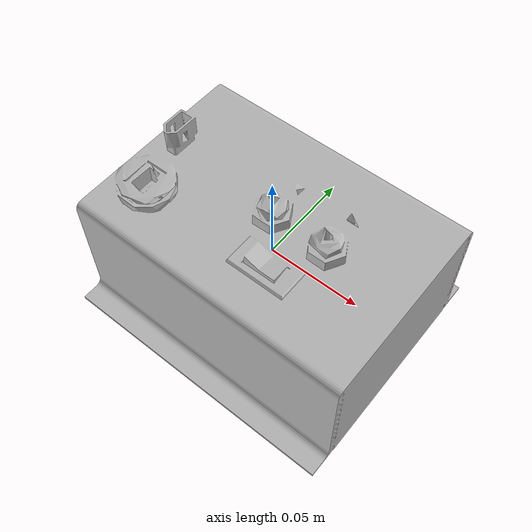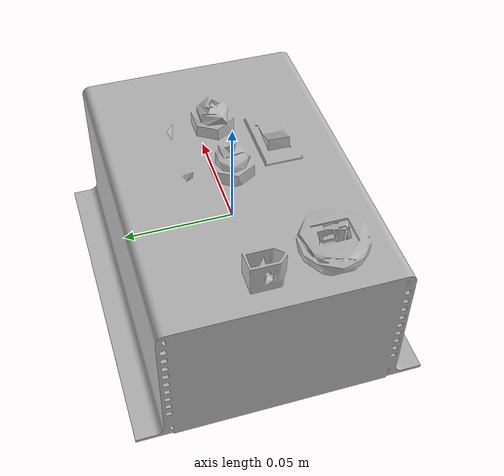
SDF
<?xml version='1.0'?>
<sdf version='1.4'>
  <model name="module">
    <static>false</static>
      <link name='chassis'>
        <pose>0 0 0 0 0 0</pose>

        <collision name='collision'>
          <geometry>
            <box>
              <size>.16 .12 .08</size>
            </box>
          </geometry>
        </collision>

        <visual name='visual'>
          <geometry>
            <mesh>
              <uri>/catkin_ws/src/experimentdevel/world/module/meshes/module_dec.dae</uri>
            </mesh>
          </geometry>
        </visual>
      </link>
  </model>
</sdf>
